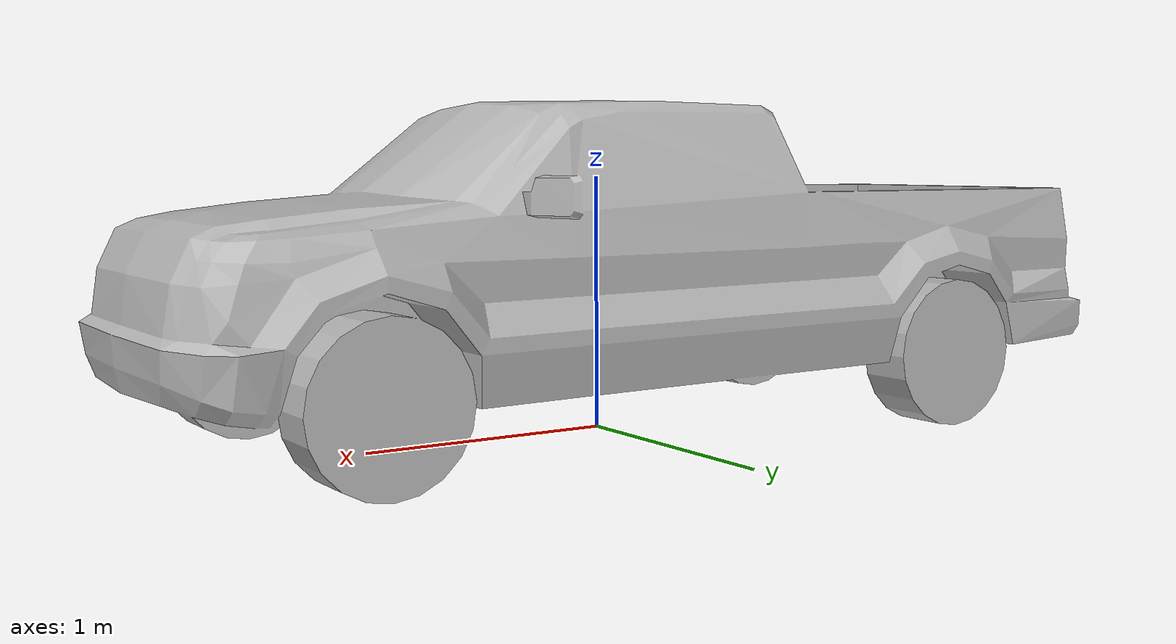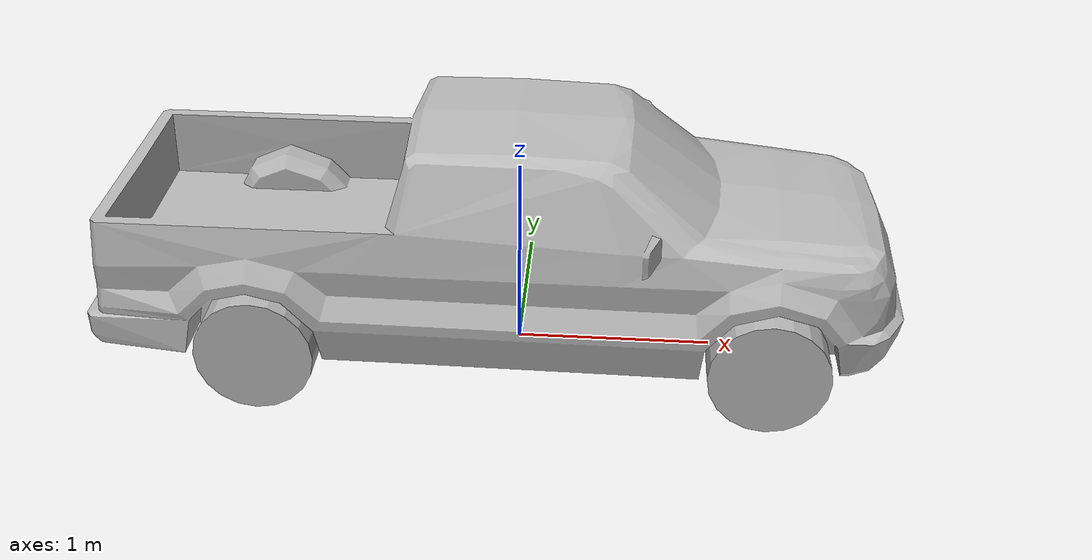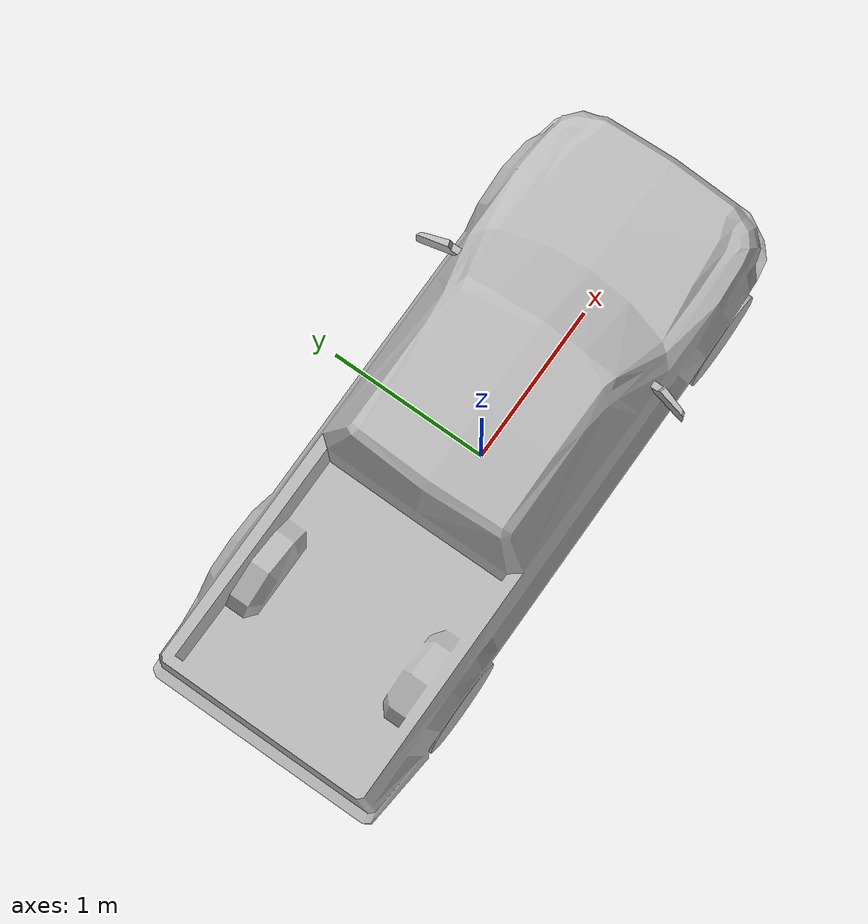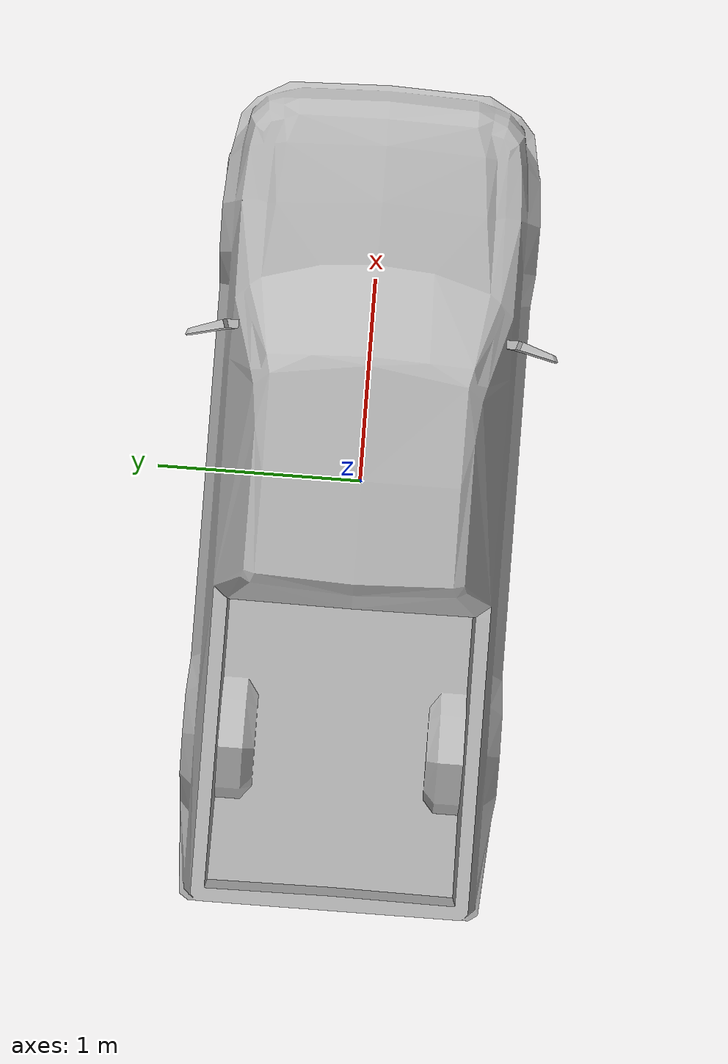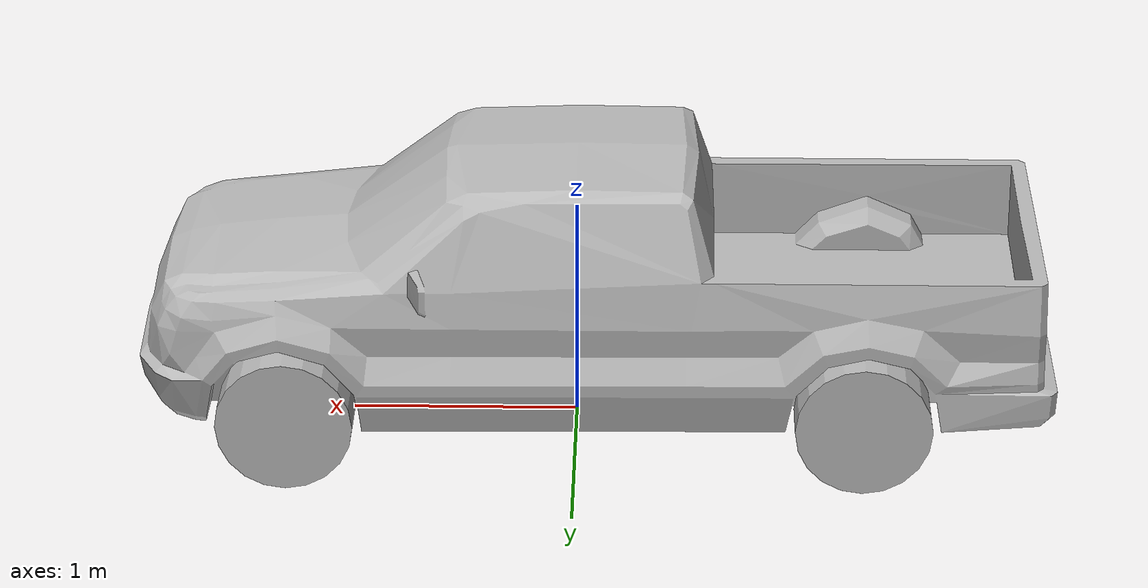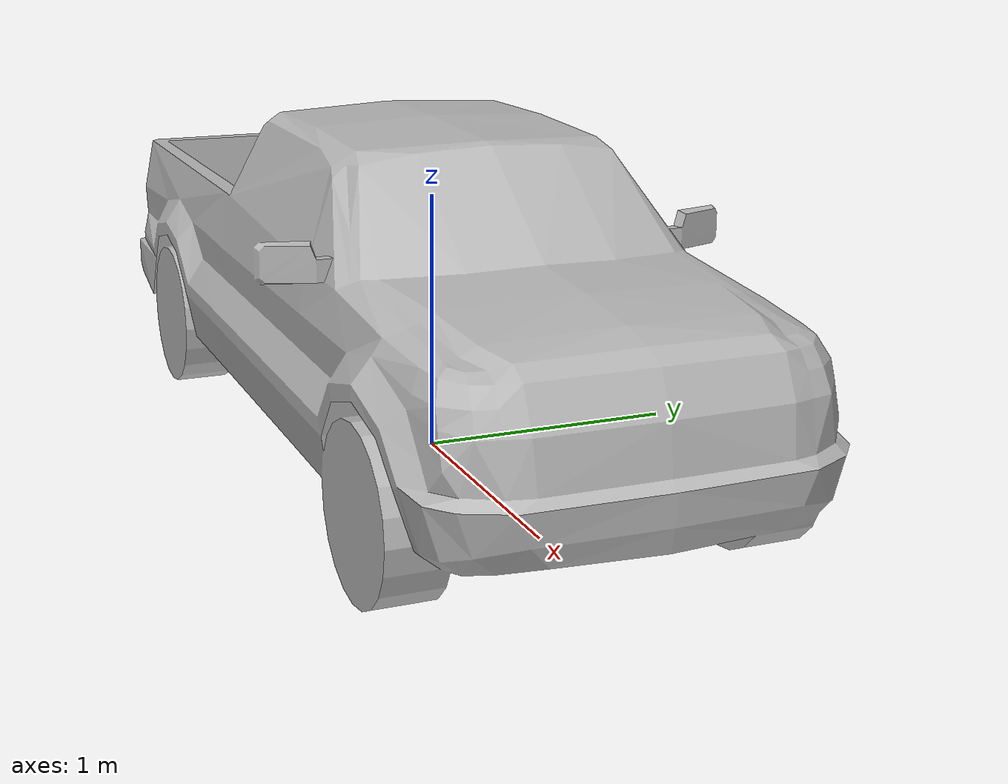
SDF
<?xml version="1.0" ?>
<sdf version="1.6">
    <model name="pickup">
        <static>true</static>
        <link name="link">
            <collision name="collision">
                <pose>0 0 0.5 0 0 0</pose>
                <geometry>
                    <box>
                        <size>2.0 1.0 1.0</size>
                    </box>
                </geometry>
            </collision>
            <visual name="visual">
                <pose>0 0 0 0 0 -1.57079632679</pose>
                <geometry>
                    <mesh>
                        <uri>meshes/pickup.dae</uri>
                        <scale>0.7 0.7 0.7</scale>
                    </mesh>
                </geometry>
            </visual>
        </link>
    </model>
</sdf>
